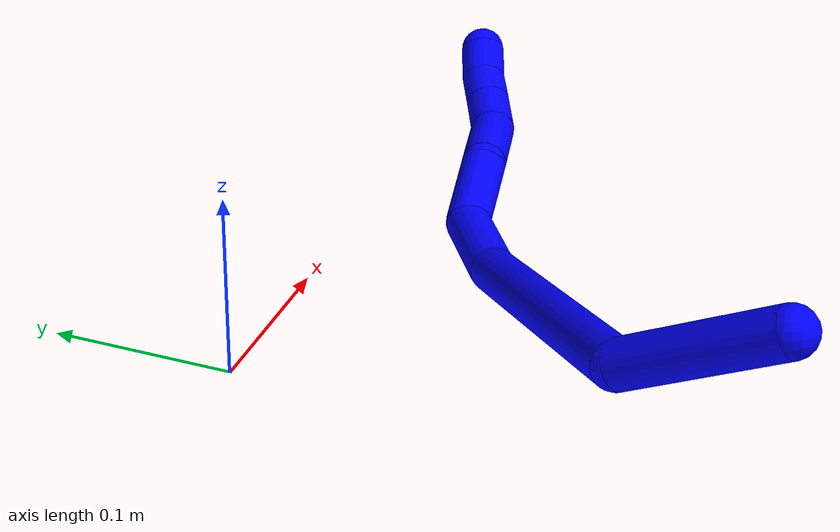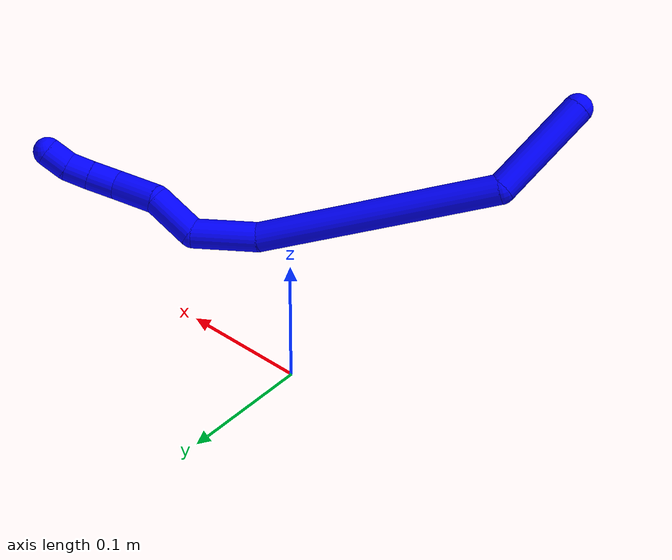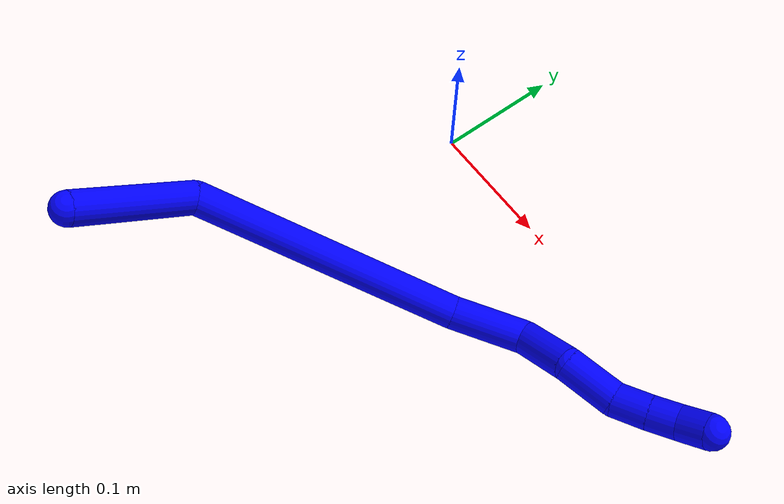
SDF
<sdf version="1.7">
 <world name="default">
  <plugin name="TubeGeneratorPlugin" filename="libtube_generator_plugin.so"/>
  <model name="photoneo_s_sensor">
   <static>1</static>
   <pose>0 0 2 1.57079 1.57079 3.14159</pose>
   <link name="link">
    <inertial><mass>0.1</mass></inertial>
    <sensor name="sensor" type="depth">
     <update_rate>30</update_rate>
     <camera>
      <horizontal_fov>1.22</horizontal_fov>
      <image><width>1920</width><height>1200</height><format>B8G8R8</format></image>
      <clip><near>0.1</near><far>4</far></clip>
      <depth_camera><output>points</output></depth_camera>
     </camera>
     <plugin name="camera_plugin" filename="libgazebo_ros_depth_camera.so">
      <baseline>0.2</baseline>
      <alwaysOn>1</alwaysOn>
      <updateRate>0.0</updateRate>
      <cameraName>camera_ir</cameraName>
      <imageTopicName>/camera/color/image_raw</imageTopicName>
      <cameraInfoTopicName>/camera/color/camera_info</cameraInfoTopicName>
      <depthImageTopicName>/camera/depth/image_raw</depthImageTopicName>
      <depthImageCameraInfoTopicName>/camera/depth/camera_info</depthImageCameraInfoTopicName>
      <pointCloudTopicName>/camera/depth/points</pointCloudTopicName>
      <frameName>fr_optical</frameName>
      <pointCloudCutoff>0.1</pointCloudCutoff>
      <pointCloudCutoffMax>2.0</pointCloudCutoffMax>
      <distortionK1>0</distortionK1>
      <distortionK2>0</distortionK2>
      <distortionK3>0</distortionK3>
      <distortionT1>0</distortionT1>
      <distortionT2>0</distortionT2>
      <CxPrime>0</CxPrime>
      <Cx>0</Cx>
      <Cy>0</Cy>
      <focalLength>0</focalLength>
      <hackBaseline>0</hackBaseline>
     </plugin>
    </sensor>
   </link>
  </model>
  <gravity>0 0 -9.8</gravity>
  <magnetic_field>6e-06 2.3e-05 -4.2e-05</magnetic_field>
  <atmosphere type="adiabatic"/>
  <physics name="default_physics" default="0" type="ode">
   <max_step_size>0.003</max_step_size>
   <real_time_factor>1</real_time_factor>
   <real_time_update_rate>1000</real_time_update_rate>
   <max_contacts>10000</max_contacts>
   <ode>
    <solver>
     <type>quick</type>
     <iters>100</iters>
     <sor>1.3</sor>
     <use_dynamic_moi_rescaling>0</use_dynamic_moi_rescaling>
    </solver>
    <constraints>
     <contact_max_correcting_vel>0</contact_max_correcting_vel>
     <contact_surface_layer>0.001</contact_surface_layer>
     <cfm>0</cfm>
     <erp>0.2</erp>
    </constraints>
   </ode>
  </physics>
  <scene><ambient>0.4 0.4 0.4 1</ambient><background>0.7 0.7 0.7 1</background><shadows>0</shadows></scene>
  <audio><device>default</device></audio>
  <spherical_coordinates>
   <surface_model>EARTH_WGS84</surface_model>
   <latitude_deg>0</latitude_deg>
   <longitude_deg>0</longitude_deg>
   <elevation>0</elevation>
   <heading_deg>0</heading_deg>
  </spherical_coordinates>
  <model name="bin">
   <static>1</static>
   <link name="bottom">
    <collision name="collision-bottom">
     <pose>0 0 -0.01 0 -0 0</pose>
     <geometry><box><size>0.8 0.6 0.02</size></box></geometry>
     <surface>
      <friction><ode><mu>100</mu><mu2>100</mu2></ode></friction>
      <contact><collide_bitmask>65535</collide_bitmask></contact>
     </surface>
    </collision>
   </link>
   <link name="west_wall">
    <collision name="collision-west_wall">
     <pose>-0.41 0 0.1 0 -0 0</pose>
     <geometry><box><size>0.02 0.6 0.2</size></box></geometry>
     <surface>
      <friction><ode><mu>100</mu><mu2>100</mu2></ode></friction>
      <contact><collide_bitmask>65535</collide_bitmask></contact>
     </surface>
    </collision>
   </link>
   <link name="east_wall">
    <collision name="collision-east_wall">
     <pose>0.41 0 0.1 0 -0 0</pose>
     <geometry><box><size>0.02 0.6 0.2</size></box></geometry>
     <surface>
      <friction><ode><mu>100</mu><mu2>100</mu2></ode></friction>
      <contact><collide_bitmask>65535</collide_bitmask></contact>
     </surface>
    </collision>
   </link>
   <link name="south_wall">
    <collision name="collision-south_wall">
     <pose>0 -0.31 0.1 0 -0 0</pose>
     <geometry><box><size>0.8 0.02 0.2</size></box></geometry>
     <surface>
      <friction><ode><mu>100</mu><mu2>100</mu2></ode></friction>
      <contact><collide_bitmask>65535</collide_bitmask></contact>
     </surface>
    </collision>
   </link>
   <link name="north_wall">
    <collision name="collision-north_wall">
     <pose>0 0.31 0.1 0 -0 0</pose>
     <geometry><box><size>0.8 0.02 0.2</size></box></geometry>
     <surface>
      <friction><ode><mu>100</mu><mu2>100</mu2></ode></friction>
      <contact><collide_bitmask>65535</collide_bitmask></contact>
     </surface>
    </collision>
   </link>
  </model>
  <model name="1">
   <static>0</static>
   <link name="1">
    <collision name="collision-cylinder-e_1_1_4">
     <pose>0.043369 -0.006737 0.012341 0.499717 1.25729 0.366899</pose>
     <geometry><cylinder><radius>0.0125</radius><length>0.091182</length></cylinder></geometry>
     <surface>
      <friction><ode><mu>1.16</mu><mu2>1.16</mu2><slip1>0</slip1><slip2>0</slip2></ode></friction>
      <contact><ode><kp>1e+06</kp><kd>1</kd><max_vel>0</max_vel><min_depth>0.001</min_depth></ode></contact>
     </surface>
    </collision>
    <visual name="visual-cylinder-e_1_1_4">
     <pose>0.043369 -0.006737 0.012341 0.499717 1.25729 0.366899</pose>
     <geometry><cylinder><radius>0.0125</radius><length>0.091182</length></cylinder></geometry>
     <material><ambient>0 0 1 1</ambient></material>
    </visual>
    <collision name="collision-cylinder-e_2_4_5">
     <pose>0.173877 0.039655 0.028978 -1.49011 1.02181 -0.95439</pose>
     <geometry><cylinder><radius>0.0125</radius><length>0.204297</length></cylinder></geometry>
     <surface>
      <friction><ode><mu>1.16</mu><mu2>1.16</mu2><slip1>0</slip1><slip2>0</slip2></ode></friction>
      <contact><ode><kp>1e+06</kp><kd>1</kd><max_vel>0</max_vel><min_depth>0.001</min_depth></ode></contact>
     </surface>
    </collision>
    <visual name="visual-cylinder-e_2_4_5">
     <pose>0.173877 0.039655 0.028978 -1.49011 1.02181 -0.95439</pose>
     <geometry><cylinder><radius>0.0125</radius><length>0.204297</length></cylinder></geometry>
     <material><ambient>0 0 1 1</ambient></material>
    </visual>
    <collision name="collision-cylinder-e_3_5_6">
     <pose>0.283518 0.107925 0.026712 -1.97979 0.93808 -1.31481</pose>
     <geometry><cylinder><radius>0.0125</radius><length>0.05581</length></cylinder></geometry>
     <surface>
      <friction><ode><mu>1.16</mu><mu2>1.16</mu2><slip1>0</slip1><slip2>0</slip2></ode></friction>
      <contact><ode><kp>1e+06</kp><kd>1</kd><max_vel>0</max_vel><min_depth>0.001</min_depth></ode></contact>
     </surface>
    </collision>
    <visual name="visual-cylinder-e_3_5_6">
     <pose>0.283518 0.107925 0.026712 -1.97979 0.93808 -1.31481</pose>
     <geometry><cylinder><radius>0.0125</radius><length>0.05581</length></cylinder></geometry>
     <material><ambient>0 0 1 1</ambient></material>
    </visual>
    <collision name="collision-cylinder-e_4_6_7">
     <pose>0.312222 0.138381 0.006968 -2.28144 0.297724 -0.63197</pose>
     <geometry><cylinder><radius>0.0125</radius><length>0.042275</length></cylinder></geometry>
     <surface>
      <friction><ode><mu>1.16</mu><mu2>1.16</mu2><slip1>0</slip1><slip2>0</slip2></ode></friction>
      <contact><ode><kp>1e+06</kp><kd>1</kd><max_vel>0</max_vel><min_depth>0.001</min_depth></ode></contact>
     </surface>
    </collision>
    <visual name="visual-cylinder-e_4_6_7">
     <pose>0.312222 0.138381 0.006968 -2.28144 0.297724 -0.63197</pose>
     <geometry><cylinder><radius>0.0125</radius><length>0.042275</length></cylinder></geometry>
     <material><ambient>0 0 1 1</ambient></material>
    </visual>
    <collision name="collision-cylinder-e_5_7_8">
     <pose>0.329062 0.169609 -0.011251 -1.87737 0.567519 -0.757921</pose>
     <geometry><cylinder><radius>0.0125</radius><length>0.039586</length></cylinder></geometry>
     <surface>
      <friction><ode><mu>1.16</mu><mu2>1.16</mu2><slip1>0</slip1><slip2>0</slip2></ode></friction>
      <contact><ode><kp>1e+06</kp><kd>1</kd><max_vel>0</max_vel><min_depth>0.001</min_depth></ode></contact>
     </surface>
    </collision>
    <visual name="visual-cylinder-e_5_7_8">
     <pose>0.329062 0.169609 -0.011251 -1.87737 0.567519 -0.757921</pose>
     <geometry><cylinder><radius>0.0125</radius><length>0.039586</length></cylinder></geometry>
     <material><ambient>0 0 1 1</ambient></material>
    </visual>
    <collision name="collision-cylinder-e_6_8_9">
     <pose>0.347748 0.193043 -0.022063 -2.22558 0.703578 -1.28005</pose>
     <geometry><cylinder><radius>0.0125</radius><length>0.024874</length></cylinder></geometry>
     <surface>
      <friction><ode><mu>1.16</mu><mu2>1.16</mu2><slip1>0</slip1><slip2>0</slip2></ode></friction>
      <contact><ode><kp>1e+06</kp><kd>1</kd><max_vel>0</max_vel><min_depth>0.001</min_depth></ode></contact>
     </surface>
    </collision>
    <visual name="visual-cylinder-e_6_8_9">
     <pose>0.347748 0.193043 -0.022063 -2.22558 0.703578 -1.28005</pose>
     <geometry><cylinder><radius>0.0125</radius><length>0.024874</length></cylinder></geometry>
     <material><ambient>0 0 1 1</ambient></material>
    </visual>
    <collision name="collision-cylinder-e_7_9_10">
     <pose>0.362427 0.206515 -0.033274 -2.31115 0.688721 -1.36589</pose>
     <geometry><cylinder><radius>0.0125</radius><length>0.020875</length></cylinder></geometry>
     <surface>
      <friction><ode><mu>1.16</mu><mu2>1.16</mu2><slip1>0</slip1><slip2>0</slip2></ode></friction>
      <contact><ode><kp>1e+06</kp><kd>1</kd><max_vel>0</max_vel><min_depth>0.001</min_depth></ode></contact>
     </surface>
    </collision>
    <visual name="visual-cylinder-e_7_9_10">
     <pose>0.362427 0.206515 -0.033274 -2.31115 0.688721 -1.36589</pose>
     <geometry><cylinder><radius>0.0125</radius><length>0.020875</length></cylinder></geometry>
     <material><ambient>0 0 1 1</ambient></material>
    </visual>
    <collision name="collision-cylinder-e_8_10_2">
     <pose>0.373668 0.218178 -0.046289 -2.49551 0.451929 -1.20351</pose>
     <geometry><cylinder><radius>0.0125</radius><length>0.021101</length></cylinder></geometry>
     <surface>
      <friction><ode><mu>1.16</mu><mu2>1.16</mu2><slip1>0</slip1><slip2>0</slip2></ode></friction>
      <contact><ode><kp>1e+06</kp><kd>1</kd><max_vel>0</max_vel><min_depth>0.001</min_depth></ode></contact>
     </surface>
    </collision>
    <visual name="visual-cylinder-e_8_10_2">
     <pose>0.373668 0.218178 -0.046289 -2.49551 0.451929 -1.20351</pose>
     <geometry><cylinder><radius>0.0125</radius><length>0.021101</length></cylinder></geometry>
     <material><ambient>0 0 1 1</ambient></material>
    </visual>
    <collision name="collision-sphere-2">
     <pose>0.378276 0.223892 -0.053867 0 -0 0</pose>
     <geometry><sphere><radius>0.0125</radius></sphere></geometry>
     <surface>
      <friction><ode><mu>1.16</mu><mu2>1.16</mu2><slip1>0</slip1><slip2>0</slip2></ode></friction>
      <contact><ode><kp>1e+06</kp><kd>1</kd><max_vel>0</max_vel><min_depth>0.001</min_depth></ode></contact>
     </surface>
    </collision>
    <visual name="visual-sphere-2">
     <pose>0.378276 0.223892 -0.053867 0 -0 0</pose>
     <geometry><sphere><radius>0.0125</radius></sphere></geometry>
     <material><ambient>0 0 1 1</ambient></material>
    </visual>
    <collision name="collision-sphere-10">
     <pose>0.369061 0.212464 -0.03871 0 -0 0</pose>
     <geometry><sphere><radius>0.0125</radius></sphere></geometry>
     <surface>
      <friction><ode><mu>1.16</mu><mu2>1.16</mu2><slip1>0</slip1><slip2>0</slip2></ode></friction>
      <contact><ode><kp>1e+06</kp><kd>1</kd><max_vel>0</max_vel><min_depth>0.001</min_depth></ode></contact>
     </surface>
    </collision>
    <visual name="visual-sphere-10">
     <pose>0.369061 0.212464 -0.03871 0 -0 0</pose>
     <geometry><sphere><radius>0.0125</radius></sphere></geometry>
     <material><ambient>0 0 1 1</ambient></material>
    </visual>
    <collision name="collision-sphere-9">
     <pose>0.355794 0.200566 -0.027839 0 -0 0</pose>
     <geometry><sphere><radius>0.0125</radius></sphere></geometry>
     <surface>
      <friction><ode><mu>1.16</mu><mu2>1.16</mu2><slip1>0</slip1><slip2>0</slip2></ode></friction>
      <contact><ode><kp>1e+06</kp><kd>1</kd><max_vel>0</max_vel><min_depth>0.001</min_depth></ode></contact>
     </surface>
    </collision>
    <visual name="visual-sphere-9">
     <pose>0.355794 0.200566 -0.027839 0 -0 0</pose>
     <geometry><sphere><radius>0.0125</radius></sphere></geometry>
     <material><ambient>0 0 1 1</ambient></material>
    </visual>
    <collision name="collision-sphere-4">
     <pose>0.086738 -0.013474 0.024681 0 -0 0</pose>
     <geometry><sphere><radius>0.0125</radius></sphere></geometry>
     <surface>
      <friction><ode><mu>1.16</mu><mu2>1.16</mu2><slip1>0</slip1><slip2>0</slip2></ode></friction>
      <contact><ode><kp>1e+06</kp><kd>1</kd><max_vel>0</max_vel><min_depth>0.001</min_depth></ode></contact>
     </surface>
    </collision>
    <visual name="visual-sphere-4">
     <pose>0.086738 -0.013474 0.024681 0 -0 0</pose>
     <geometry><sphere><radius>0.0125</radius></sphere></geometry>
     <material><ambient>0 0 1 1</ambient></material>
    </visual>
    <collision name="collision-sphere-1">
     <geometry><sphere><radius>0.0125</radius></sphere></geometry>
     <surface>
      <friction><ode><mu>1.16</mu><mu2>1.16</mu2><slip1>0</slip1><slip2>0</slip2></ode></friction>
      <contact><ode><kp>1e+06</kp><kd>1</kd><max_vel>0</max_vel><min_depth>0.001</min_depth></ode></contact>
     </surface>
    </collision>
    <visual name="visual-sphere-1">
     <geometry><sphere><radius>0.0125</radius></sphere></geometry>
     <material><ambient>0 0 1 1</ambient></material>
    </visual>
    <collision name="collision-sphere-8">
     <pose>0.339701 0.185521 -0.016288 0 -0 0</pose>
     <geometry><sphere><radius>0.0125</radius></sphere></geometry>
     <surface>
      <friction><ode><mu>1.16</mu><mu2>1.16</mu2><slip1>0</slip1><slip2>0</slip2></ode></friction>
      <contact><ode><kp>1e+06</kp><kd>1</kd><max_vel>0</max_vel><min_depth>0.001</min_depth></ode></contact>
     </surface>
    </collision>
    <visual name="visual-sphere-8">
     <pose>0.339701 0.185521 -0.016288 0 -0 0</pose>
     <geometry><sphere><radius>0.0125</radius></sphere></geometry>
     <material><ambient>0 0 1 1</ambient></material>
    </visual>
    <collision name="collision-sphere-5">
     <pose>0.261015 0.092785 0.033274 0 -0 0</pose>
     <geometry><sphere><radius>0.0125</radius></sphere></geometry>
     <surface>
      <friction><ode><mu>1.16</mu><mu2>1.16</mu2><slip1>0</slip1><slip2>0</slip2></ode></friction>
      <contact><ode><kp>1e+06</kp><kd>1</kd><max_vel>0</max_vel><min_depth>0.001</min_depth></ode></contact>
     </surface>
    </collision>
    <visual name="visual-sphere-5">
     <pose>0.261015 0.092785 0.033274 0 -0 0</pose>
     <geometry><sphere><radius>0.0125</radius></sphere></geometry>
     <material><ambient>0 0 1 1</ambient></material>
    </visual>
    <collision name="collision-sphere-6">
     <pose>0.306021 0.123065 0.02015 0 -0 0</pose>
     <geometry><sphere><radius>0.0125</radius></sphere></geometry>
     <surface>
      <friction><ode><mu>1.16</mu><mu2>1.16</mu2><slip1>0</slip1><slip2>0</slip2></ode></friction>
      <contact><ode><kp>1e+06</kp><kd>1</kd><max_vel>0</max_vel><min_depth>0.001</min_depth></ode></contact>
     </surface>
    </collision>
    <visual name="visual-sphere-6">
     <pose>0.306021 0.123065 0.02015 0 -0 0</pose>
     <geometry><sphere><radius>0.0125</radius></sphere></geometry>
     <material><ambient>0 0 1 1</ambient></material>
    </visual>
    <collision name="collision-sphere-7">
     <pose>0.318422 0.153697 -0.006214 0 -0 0</pose>
     <geometry><sphere><radius>0.0125</radius></sphere></geometry>
     <surface>
      <friction><ode><mu>1.16</mu><mu2>1.16</mu2><slip1>0</slip1><slip2>0</slip2></ode></friction>
      <contact><ode><kp>1e+06</kp><kd>1</kd><max_vel>0</max_vel><min_depth>0.001</min_depth></ode></contact>
     </surface>
    </collision>
    <visual name="visual-sphere-7">
     <pose>0.318422 0.153697 -0.006214 0 -0 0</pose>
     <geometry><sphere><radius>0.0125</radius></sphere></geometry>
     <material><ambient>0 0 1 1</ambient></material>
    </visual>
    <inertial>
     <pose>0.211251 0.079582 0.01233 0 -0 0</pose>
     <mass>0.5</mass>
     <inertia>
      <ixx>-4.1e-05</ixx>
      <ixy>0</ixy>
      <ixz>0</ixz>
      <iyy>0.000304</iyy>
      <iyz>0</iyz>
      <izz>-0.00109</izz>
     </inertia>
    </inertial>
   </link>
   <pose>-0.050527 -0.287635 0.121215 -3.04293 0.257523 1.17903</pose>
  </model>
 </world>
</sdf>
